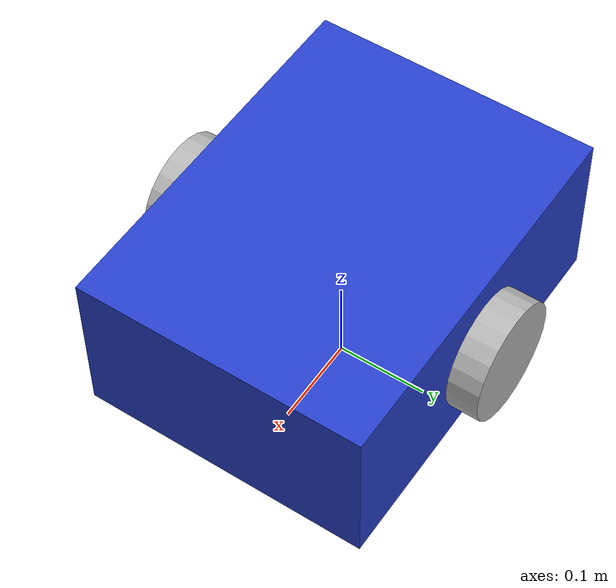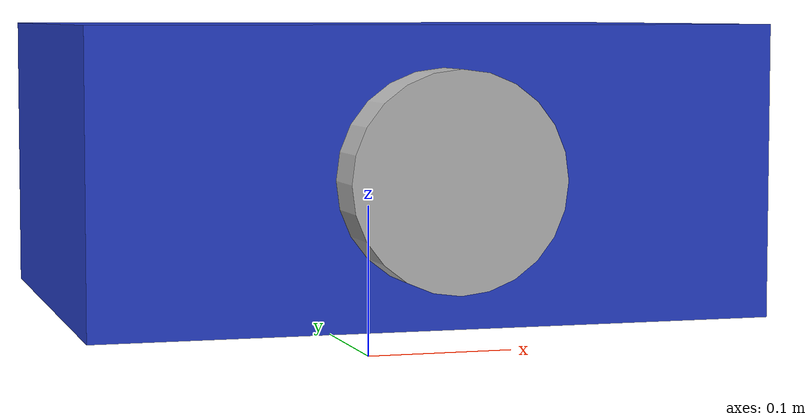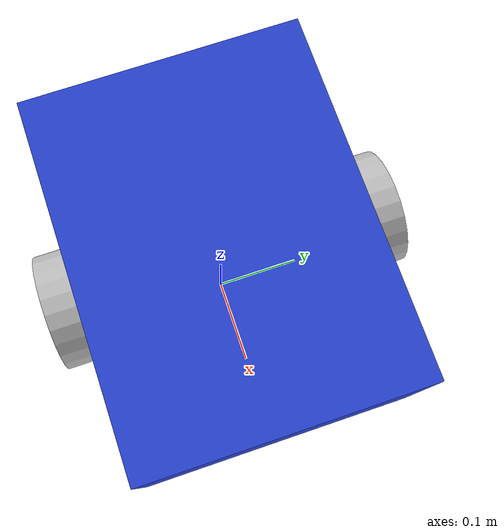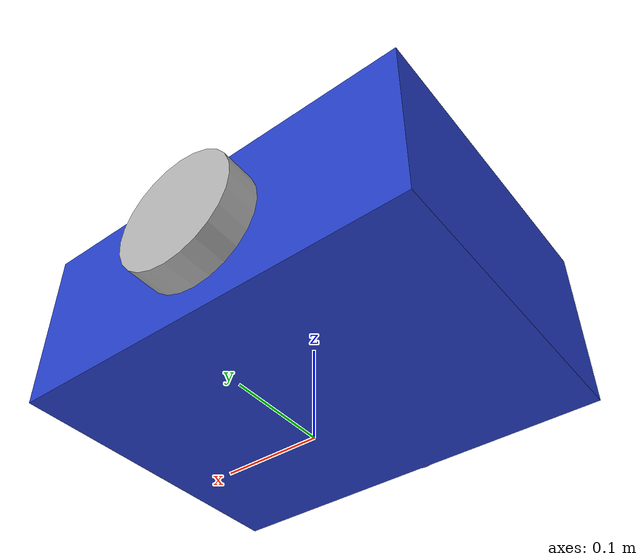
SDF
<?xml version="1.0"?>
<sdf version="1.11">
  <model name="max">
    <pose>0 0 0.13 0 0 0</pose>
    <link name="base_link">
      <inertial>
        <mass>5</mass>
        <inertia>
          <ixx>0.08</ixx><iyy>0.10</iyy><izz>0.12</izz>
          <ixy>0</ixy><ixz>0</ixz><iyz>0</iyz>
        </inertia>
      </inertial>
      <collision name="body_collision">
        <geometry><box><size>0.42 0.32 0.18</size></box></geometry>
      </collision>
      <visual name="body_visual">
        <geometry><box><size>0.42 0.32 0.18</size></box></geometry>
        <material><diffuse>0.15 0.25 0.8 1</diffuse></material>
      </visual>
      <sensor name="camera" type="camera">
        <pose>0.19 0 0.12 0 0 0</pose>
        <topic>/camera</topic>
        <update_rate>30</update_rate>
        <camera>
          <horizontal_fov>1.15</horizontal_fov>
          <image><width>640</width><height>480</height><format>R8G8B8</format></image>
          <clip><near>0.05</near><far>20</far></clip>
        </camera>
        <always_on>true</always_on>
      </sensor>
    </link>

    <link name="left_wheel">
      <pose>0 0.18 0 1.5708 0 0</pose>
      <inertial><mass>0.25</mass><inertia><ixx>0.001</ixx><iyy>0.001</iyy><izz>0.001</izz></inertia></inertial>
      <collision name="collision"><geometry><cylinder><radius>0.065</radius><length>0.035</length></cylinder></geometry></collision>
      <visual name="visual"><geometry><cylinder><radius>0.065</radius><length>0.035</length></cylinder></geometry></visual>
    </link>
    <joint name="left_wheel_joint" type="revolute">
      <parent>base_link</parent><child>left_wheel</child>
      <axis><xyz>0 1 0</xyz></axis>
    </joint>

    <link name="right_wheel">
      <pose>0 -0.18 0 1.5708 0 0</pose>
      <inertial><mass>0.25</mass><inertia><ixx>0.001</ixx><iyy>0.001</iyy><izz>0.001</izz></inertia></inertial>
      <collision name="collision"><geometry><cylinder><radius>0.065</radius><length>0.035</length></cylinder></geometry></collision>
      <visual name="visual"><geometry><cylinder><radius>0.065</radius><length>0.035</length></cylinder></geometry></visual>
    </link>
    <joint name="right_wheel_joint" type="revolute">
      <parent>base_link</parent><child>right_wheel</child>
      <axis><xyz>0 1 0</xyz></axis>
    </joint>

    <link name="rear_caster">
      <pose>-0.16 0 -0.055 0 0 0</pose>
      <inertial><mass>0.1</mass><inertia><ixx>0.0001</ixx><iyy>0.0001</iyy><izz>0.0001</izz></inertia></inertial>
      <collision name="collision"><geometry><sphere><radius>0.025</radius></sphere></geometry></collision>
      <visual name="visual"><geometry><sphere><radius>0.025</radius></sphere></geometry></visual>
    </link>
    <joint name="rear_caster_joint" type="fixed">
      <parent>base_link</parent><child>rear_caster</child>
    </joint>

    <plugin filename="gz-sim-diff-drive-system" name="gz::sim::systems::DiffDrive">
      <left_joint>left_wheel_joint</left_joint>
      <right_joint>right_wheel_joint</right_joint>
      <wheel_separation>0.36</wheel_separation>
      <wheel_radius>0.065</wheel_radius>
      <topic>/cmd_vel</topic>
      <odom_topic>/wheel/odom</odom_topic>
      <frame_id>odom</frame_id>
      <child_frame_id>base_link</child_frame_id>
    </plugin>
    <plugin filename="gz-sim-joint-state-publisher-system" name="gz::sim::systems::JointStatePublisher"/>
  </model>
</sdf>
